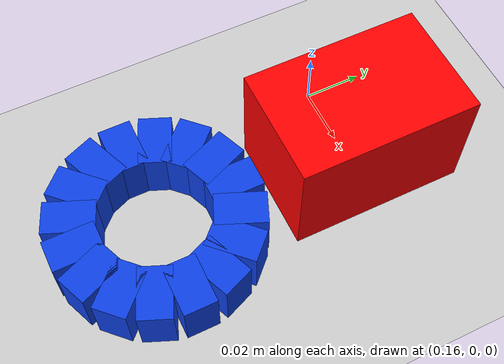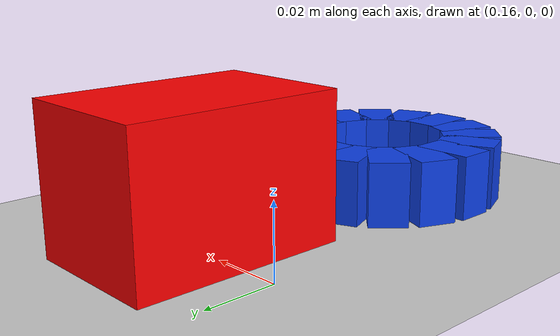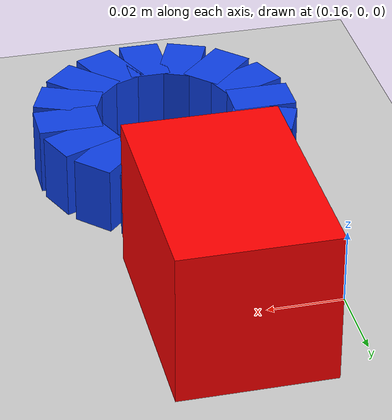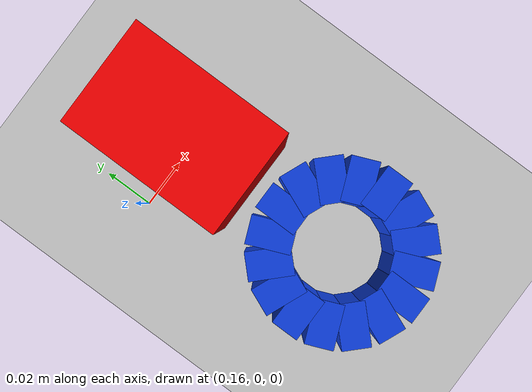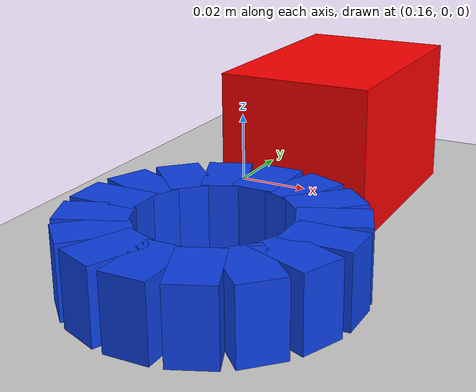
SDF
<?xml version="1.0"?>
<sdf version="1.10">
  <world name="empty">
    <physics name="1ms" type="ignored">
      <!-- 파지는 접촉이 지배한다. 5ms에서는 한 스텝에 손가락이
           블록 안으로 파고들어 관절값이 오염됐다(2026-08-07 실측:
           블록을 쥔 채 gripper_joint_1 = -5e-05, 즉 완전 닫힘).
           1ms로 낮춰 관통 깊이를 줄인다. 대가는 물리 계산량 5배. -->
      <max_step_size>0.001</max_step_size>
      <real_time_factor>1</real_time_factor>
      <real_time_update_rate>1000</real_time_update_rate>
    </physics>
    <plugin name="gz::sim::systems::Physics" filename="gz-sim-physics-system"/>
    <plugin name="gz::sim::systems::UserCommands" filename="gz-sim-user-commands-system"/>
    <plugin name="gz::sim::systems::SceneBroadcaster" filename="gz-sim-scene-broadcaster-system"/>
    <plugin name="gz::sim::systems::Contact" filename="gz-sim-contact-system"/>
    <plugin name="gz::sim::systems::Sensors" filename="gz-sim-sensors-system">
      <render_engine>ogre2</render_engine>
    </plugin>
    <gravity>0 0 -9.8</gravity>
    <scene>
      <ambient>0.4 0.4 0.4 1</ambient>
      <background>0.7 0.7 0.7 1</background>
      <shadows>true</shadows>
    </scene>

    <model name="ground_plane">
      <static>true</static>
      <link name="link">
        <collision name="collision">
          <geometry><plane><normal>0 0 1</normal><size>100 100</size></plane></geometry>
          <surface><friction><ode/></friction></surface>
        </collision>
        <visual name="visual">
          <geometry><plane><normal>0 0 1</normal><size>100 100</size></plane></geometry>
          <material>
            <ambient>0.8 0.8 0.8 1</ambient>
            <diffuse>0.8 0.8 0.8 1</diffuse>
          </material>
        </visual>
      </link>
    </model>

    <light name="sun" type="directional">
      <pose>0 0 10 0 0 0</pose>
      <cast_shadows>true</cast_shadows>
      <intensity>1</intensity>
      <direction>-0.5 0.1 -0.9</direction>
      <diffuse>0.8 0.8 0.8 1</diffuse>
      <specular>0.2 0.2 0.2 1</specular>
      <attenuation><range>1000</range><linear>0.01</linear><constant>0.9</constant><quadratic>0.001</quadratic></attenuation>
    </light>

    <!-- === 씬 오브젝트: 빨간 블록 1개 + 파란 도넛 1개 + 종이컵 1개 ===
         목적: 내부 파지(그리퍼를 닫은 채 넣고 벌리기)를 눈으로 확인하기 위한 실험 씬.
         컵/링은 벽이 상자 16개로 쪼개져 있어 가운데 구멍이 진짜 비어 있다.
         치수는 임시값 - 실물 자로 재서 교체할 것. -->
    <model name="red_block">
      <pose>0.19 0.00 0.02 0 0 0</pose>
      <link name="link">
        <inertial>
          <mass>0.05</mass>
          <inertia><ixx>0.0000217</ixx><ixy>0</ixy><ixz>0</ixz><iyy>0.0000133</iyy><iyz>0</iyz><izz>0.0000217</izz></inertia>
        </inertial>
        <collision name="collision">
          <geometry><box><size>0.04 0.06 0.04</size></box></geometry>
          <surface><friction><ode><mu>1.0</mu><mu2>1.0</mu2></ode></friction></surface>
        </collision>
        <visual name="visual">
          <geometry><box><size>0.04 0.06 0.04</size></box></geometry>
          <material><ambient>1 0 0 1</ambient><diffuse>1 0 0 1</diffuse><specular>0.1 0.1 0.1 1</specular></material>
        </visual>
      </link>
    </model>

    <model name='blue_ring'>
          <pose>0.19 -0.07 0.001 0 0 0</pose>
        <link name='link'>
          <inertial>
            <mass>0.040</mass>
            <inertia>
              <ixx>1.5e-05</ixx><ixy>0</ixy><ixz>0</ixz>
              <iyy>1.5e-05</iyy><iyz>0</iyz><izz>2.9e-05</izz>
            </inertia>
          </inertial>
          <collision name='ring_col_0'>
            <pose>0.02650 0.00000 0.00900 0 0 0.00000</pose>
            <geometry><box><size>0.01700 0.01093 0.01800</size></box></geometry>
          </collision>
          <visual name='ring_vis_0'>
            <pose>0.02650 0.00000 0.00900 0 0 0.00000</pose>
            <geometry><box><size>0.01700 0.01093 0.01800</size></box></geometry>
            <material>
              <ambient>0.05 0.25 0.9 1</ambient>
              <diffuse>0.05 0.25 0.9 1</diffuse>
            </material>
          </visual>
          <collision name='ring_col_1'>
            <pose>0.02448 0.01014 0.00900 0 0 0.39270</pose>
            <geometry><box><size>0.01700 0.01093 0.01800</size></box></geometry>
          </collision>
          <visual name='ring_vis_1'>
            <pose>0.02448 0.01014 0.00900 0 0 0.39270</pose>
            <geometry><box><size>0.01700 0.01093 0.01800</size></box></geometry>
            <material>
              <ambient>0.05 0.25 0.9 1</ambient>
              <diffuse>0.05 0.25 0.9 1</diffuse>
            </material>
          </visual>
          <collision name='ring_col_2'>
            <pose>0.01874 0.01874 0.00900 0 0 0.78540</pose>
            <geometry><box><size>0.01700 0.01093 0.01800</size></box></geometry>
          </collision>
          <visual name='ring_vis_2'>
            <pose>0.01874 0.01874 0.00900 0 0 0.78540</pose>
            <geometry><box><size>0.01700 0.01093 0.01800</size></box></geometry>
            <material>
              <ambient>0.05 0.25 0.9 1</ambient>
              <diffuse>0.05 0.25 0.9 1</diffuse>
            </material>
          </visual>
          <collision name='ring_col_3'>
            <pose>0.01014 0.02448 0.00900 0 0 1.17810</pose>
            <geometry><box><size>0.01700 0.01093 0.01800</size></box></geometry>
          </collision>
          <visual name='ring_vis_3'>
            <pose>0.01014 0.02448 0.00900 0 0 1.17810</pose>
            <geometry><box><size>0.01700 0.01093 0.01800</size></box></geometry>
            <material>
              <ambient>0.05 0.25 0.9 1</ambient>
              <diffuse>0.05 0.25 0.9 1</diffuse>
            </material>
          </visual>
          <collision name='ring_col_4'>
            <pose>0.00000 0.02650 0.00900 0 0 1.57080</pose>
            <geometry><box><size>0.01700 0.01093 0.01800</size></box></geometry>
          </collision>
          <visual name='ring_vis_4'>
            <pose>0.00000 0.02650 0.00900 0 0 1.57080</pose>
            <geometry><box><size>0.01700 0.01093 0.01800</size></box></geometry>
            <material>
              <ambient>0.05 0.25 0.9 1</ambient>
              <diffuse>0.05 0.25 0.9 1</diffuse>
            </material>
          </visual>
          <collision name='ring_col_5'>
            <pose>-0.01014 0.02448 0.00900 0 0 1.96350</pose>
            <geometry><box><size>0.01700 0.01093 0.01800</size></box></geometry>
          </collision>
          <visual name='ring_vis_5'>
            <pose>-0.01014 0.02448 0.00900 0 0 1.96350</pose>
            <geometry><box><size>0.01700 0.01093 0.01800</size></box></geometry>
            <material>
              <ambient>0.05 0.25 0.9 1</ambient>
              <diffuse>0.05 0.25 0.9 1</diffuse>
            </material>
          </visual>
          <collision name='ring_col_6'>
            <pose>-0.01874 0.01874 0.00900 0 0 2.35619</pose>
            <geometry><box><size>0.01700 0.01093 0.01800</size></box></geometry>
          </collision>
          <visual name='ring_vis_6'>
            <pose>-0.01874 0.01874 0.00900 0 0 2.35619</pose>
            <geometry><box><size>0.01700 0.01093 0.01800</size></box></geometry>
            <material>
              <ambient>0.05 0.25 0.9 1</ambient>
              <diffuse>0.05 0.25 0.9 1</diffuse>
            </material>
          </visual>
          <collision name='ring_col_7'>
            <pose>-0.02448 0.01014 0.00900 0 0 2.74889</pose>
            <geometry><box><size>0.01700 0.01093 0.01800</size></box></geometry>
          </collision>
          <visual name='ring_vis_7'>
            <pose>-0.02448 0.01014 0.00900 0 0 2.74889</pose>
            <geometry><box><size>0.01700 0.01093 0.01800</size></box></geometry>
            <material>
              <ambient>0.05 0.25 0.9 1</ambient>
              <diffuse>0.05 0.25 0.9 1</diffuse>
            </material>
          </visual>
          <collision name='ring_col_8'>
            <pose>-0.02650 0.00000 0.00900 0 0 3.14159</pose>
            <geometry><box><size>0.01700 0.01093 0.01800</size></box></geometry>
          </collision>
          <visual name='ring_vis_8'>
            <pose>-0.02650 0.00000 0.00900 0 0 3.14159</pose>
            <geometry><box><size>0.01700 0.01093 0.01800</size></box></geometry>
            <material>
              <ambient>0.05 0.25 0.9 1</ambient>
              <diffuse>0.05 0.25 0.9 1</diffuse>
            </material>
          </visual>
          <collision name='ring_col_9'>
            <pose>-0.02448 -0.01014 0.00900 0 0 3.53429</pose>
            <geometry><box><size>0.01700 0.01093 0.01800</size></box></geometry>
          </collision>
          <visual name='ring_vis_9'>
            <pose>-0.02448 -0.01014 0.00900 0 0 3.53429</pose>
            <geometry><box><size>0.01700 0.01093 0.01800</size></box></geometry>
            <material>
              <ambient>0.05 0.25 0.9 1</ambient>
              <diffuse>0.05 0.25 0.9 1</diffuse>
            </material>
          </visual>
          <collision name='ring_col_10'>
            <pose>-0.01874 -0.01874 0.00900 0 0 3.92699</pose>
            <geometry><box><size>0.01700 0.01093 0.01800</size></box></geometry>
          </collision>
          <visual name='ring_vis_10'>
            <pose>-0.01874 -0.01874 0.00900 0 0 3.92699</pose>
            <geometry><box><size>0.01700 0.01093 0.01800</size></box></geometry>
            <material>
              <ambient>0.05 0.25 0.9 1</ambient>
              <diffuse>0.05 0.25 0.9 1</diffuse>
            </material>
          </visual>
          <collision name='ring_col_11'>
            <pose>-0.01014 -0.02448 0.00900 0 0 4.31969</pose>
            <geometry><box><size>0.01700 0.01093 0.01800</size></box></geometry>
          </collision>
          <visual name='ring_vis_11'>
            <pose>-0.01014 -0.02448 0.00900 0 0 4.31969</pose>
            <geometry><box><size>0.01700 0.01093 0.01800</size></box></geometry>
            <material>
              <ambient>0.05 0.25 0.9 1</ambient>
              <diffuse>0.05 0.25 0.9 1</diffuse>
            </material>
          </visual>
          <collision name='ring_col_12'>
            <pose>-0.00000 -0.02650 0.00900 0 0 4.71239</pose>
            <geometry><box><size>0.01700 0.01093 0.01800</size></box></geometry>
          </collision>
          <visual name='ring_vis_12'>
            <pose>-0.00000 -0.02650 0.00900 0 0 4.71239</pose>
            <geometry><box><size>0.01700 0.01093 0.01800</size></box></geometry>
            <material>
              <ambient>0.05 0.25 0.9 1</ambient>
              <diffuse>0.05 0.25 0.9 1</diffuse>
            </material>
          </visual>
          <collision name='ring_col_13'>
            <pose>0.01014 -0.02448 0.00900 0 0 5.10509</pose>
            <geometry><box><size>0.01700 0.01093 0.01800</size></box></geometry>
          </collision>
          <visual name='ring_vis_13'>
            <pose>0.01014 -0.02448 0.00900 0 0 5.10509</pose>
            <geometry><box><size>0.01700 0.01093 0.01800</size></box></geometry>
            <material>
              <ambient>0.05 0.25 0.9 1</ambient>
              <diffuse>0.05 0.25 0.9 1</diffuse>
            </material>
          </visual>
          <collision name='ring_col_14'>
            <pose>0.01874 -0.01874 0.00900 0 0 5.49779</pose>
            <geometry><box><size>0.01700 0.01093 0.01800</size></box></geometry>
          </collision>
          <visual name='ring_vis_14'>
            <pose>0.01874 -0.01874 0.00900 0 0 5.49779</pose>
            <geometry><box><size>0.01700 0.01093 0.01800</size></box></geometry>
            <material>
              <ambient>0.05 0.25 0.9 1</ambient>
              <diffuse>0.05 0.25 0.9 1</diffuse>
            </material>
          </visual>
          <collision name='ring_col_15'>
            <pose>0.02448 -0.01014 0.00900 0 0 5.89049</pose>
            <geometry><box><size>0.01700 0.01093 0.01800</size></box></geometry>
          </collision>
          <visual name='ring_vis_15'>
            <pose>0.02448 -0.01014 0.00900 0 0 5.89049</pose>
            <geometry><box><size>0.01700 0.01093 0.01800</size></box></geometry>
            <material>
              <ambient>0.05 0.25 0.9 1</ambient>
              <diffuse>0.05 0.25 0.9 1</diffuse>
            </material>
          </visual>
        </link>
      </model>

  </world>
</sdf>
